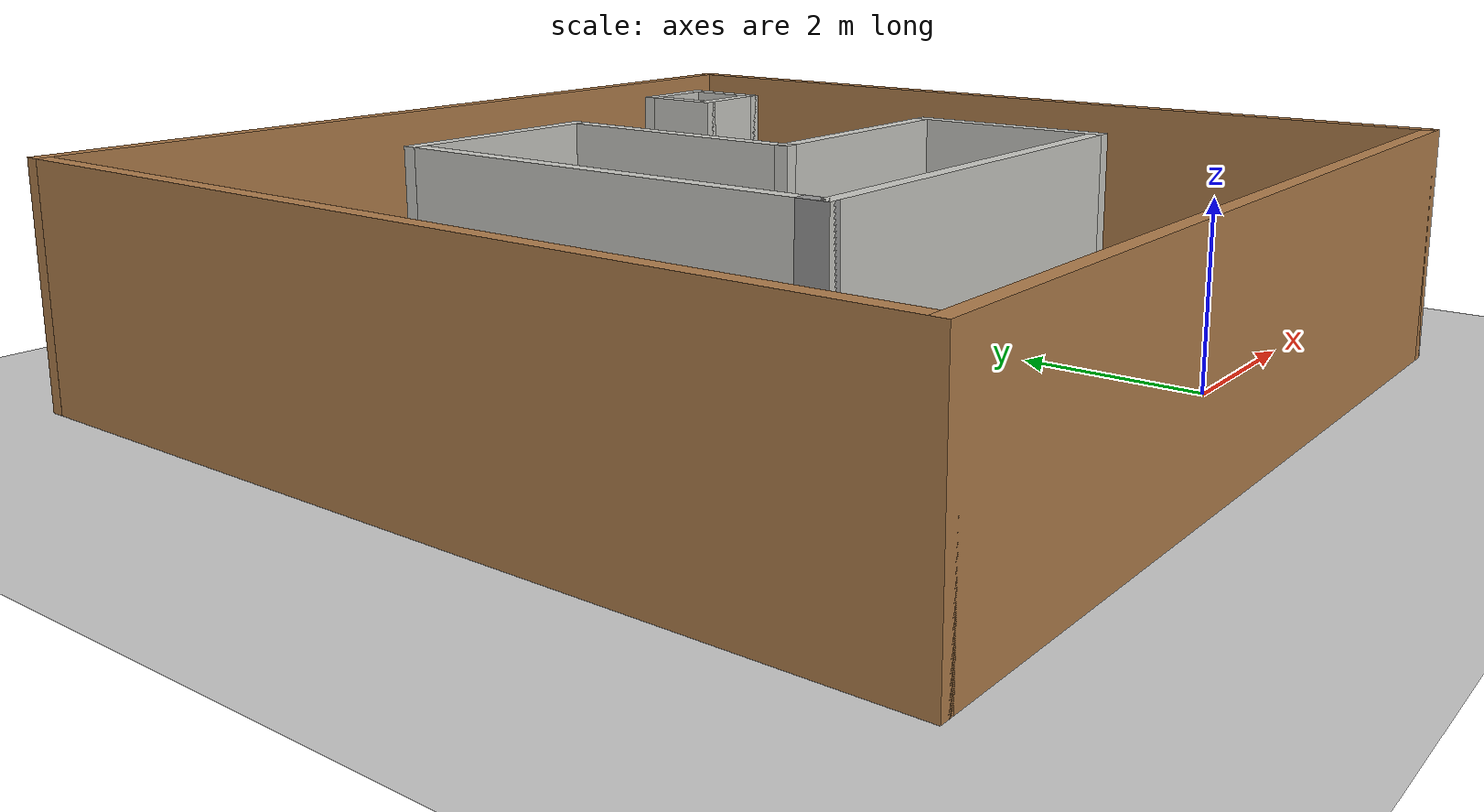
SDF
<sdf version="1.6">
 <world name="default">
  <light name="sun" type="directional">
   <pose>0 0 10 0 -0 0</pose>
   <diffuse>0.8 0.8 0.8 1</diffuse>
   <specular>0.2 0.2 0.2 1</specular>
   <attenuation>
    <range>1000</range>
    <constant>0.9</constant>
    <linear>0.01</linear>
    <quadratic>0.001</quadratic>
   </attenuation>
   <direction>-0.5 0.1 -0.9</direction>
  </light>
  <model name="ground_plane">
   <static>1</static>
   <link name="link">
    <collision name="collision">
     <geometry><plane><normal>0 0 1</normal><size>100 100</size></plane></geometry>
     <surface><friction><ode><mu>100</mu><mu2>50</mu2></ode></friction></surface>
    </collision>
    <visual name="visual">
     <cast_shadows>0</cast_shadows>
     <geometry><plane><normal>0 0 1</normal><size>100 100</size></plane></geometry>
     <material>
      <script><uri>file://media/materials/scripts/gazebo.material</uri><name>Gazebo/Grey</name></script>
     </material>
    </visual>
   </link>
  </model>
  <gravity>0 0 -9.8</gravity>
  <magnetic_field>6e-06 2.3e-05 -4.2e-05</magnetic_field>
  <atmosphere type="adiabatic"/>
  <physics name="default_physics" default="0" type="ode">
   <max_step_size>0.001</max_step_size>
   <real_time_factor>1</real_time_factor>
   <real_time_update_rate>1000</real_time_update_rate>
  </physics>
  <scene><ambient>0.4 0.4 0.4 1</ambient><background>0.7 0.7 0.7 1</background><shadows>1</shadows></scene>
  <spherical_coordinates>
   <surface_model>EARTH_WGS84</surface_model>
   <latitude_deg>0</latitude_deg>
   <longitude_deg>0</longitude_deg>
   <elevation>0</elevation>
   <heading_deg>0</heading_deg>
  </spherical_coordinates>
  <model name="newWorld">
   <pose>-2.30448 3.64043 0 0 -0 0</pose>
   <link name="Wall_65">
    <collision name="Wall_65_Collision">
     <geometry><box><size>10 0.15 2.5</size></box></geometry>
     <pose>0 0 1.25 0 -0 0</pose>
    </collision>
    <visual name="Wall_65_Visual">
     <pose>0 0 1.25 0 -0 0</pose>
     <geometry><box><size>10 0.15 2.5</size></box></geometry>
     <material>
      <script><uri>file://media/materials/scripts/gazebo.material</uri><name>Gazebo/Wood</name></script>
      <ambient>1 1 1 1</ambient>
     </material>
     <meta><layer>0</layer></meta>
    </visual>
    <pose>-4.925 0 0 0 0 -1.5708</pose>
   </link>
   <link name="Wall_66">
    <collision name="Wall_66_Collision">
     <geometry><box><size>10 0.15 2.5</size></box></geometry>
     <pose>0 0 1.25 0 -0 0</pose>
    </collision>
    <visual name="Wall_66_Visual">
     <pose>0 0 1.25 0 -0 0</pose>
     <geometry><box><size>10 0.15 2.5</size></box></geometry>
     <material>
      <script><uri>file://media/materials/scripts/gazebo.material</uri><name>Gazebo/Wood</name></script>
      <ambient>1 1 1 1</ambient>
     </material>
     <meta><layer>0</layer></meta>
    </visual>
    <pose>0 -4.925 0 0 -0 0</pose>
   </link>
   <link name="Wall_67">
    <collision name="Wall_67_Collision">
     <geometry><box><size>10 0.15 2.5</size></box></geometry>
     <pose>0 0 1.25 0 -0 0</pose>
    </collision>
    <visual name="Wall_67_Visual">
     <pose>0 0 1.25 0 -0 0</pose>
     <geometry><box><size>10 0.15 2.5</size></box></geometry>
     <material>
      <script><uri>file://media/materials/scripts/gazebo.material</uri><name>Gazebo/Wood</name></script>
      <ambient>1 1 1 1</ambient>
     </material>
     <meta><layer>0</layer></meta>
    </visual>
    <pose>4.925 0 0 0 -0 1.5708</pose>
   </link>
   <link name="Wall_68">
    <collision name="Wall_68_Collision">
     <geometry><box><size>10 0.15 2.5</size></box></geometry>
     <pose>0 0 1.25 0 -0 0</pose>
    </collision>
    <visual name="Wall_68_Visual">
     <pose>0 0 1.25 0 -0 0</pose>
     <geometry><box><size>10 0.15 2.5</size></box></geometry>
     <material>
      <script><uri>file://media/materials/scripts/gazebo.material</uri><name>Gazebo/Wood</name></script>
      <ambient>1 1 1 1</ambient>
     </material>
     <meta><layer>0</layer></meta>
    </visual>
    <pose>0 4.925 0 0 -0 3.14159</pose>
   </link>
   <link name="Wall_70">
    <collision name="Wall_70_Collision">
     <geometry><box><size>4.75 0.15 2.5</size></box></geometry>
     <pose>0 0 1.25 0 -0 0</pose>
    </collision>
    <visual name="Wall_70_Visual">
     <pose>0 0 1.25 0 -0 0</pose>
     <geometry><box><size>4.75 0.15 2.5</size></box></geometry>
     <material>
      <script><uri>file://media/materials/scripts/gazebo.material</uri><name>Gazebo/CeilingTiled</name></script>
      <ambient>1 1 1 1</ambient>
     </material>
     <meta><layer>0</layer></meta>
    </visual>
    <pose>-2.32281 0.387114 0 0 0 -1.5708</pose>
   </link>
   <link name="Wall_71">
    <collision name="Wall_71_Collision">
     <geometry><box><size>0.5 0.15 2.5</size></box></geometry>
     <pose>0 0 1.25 0 -0 0</pose>
    </collision>
    <visual name="Wall_71_Visual">
     <pose>0 0 1.25 0 -0 0</pose>
     <geometry><box><size>0.5 0.15 2.5</size></box></geometry>
     <material>
      <script><uri>file://media/materials/scripts/gazebo.material</uri><name>Gazebo/Grey</name></script>
      <ambient>1 1 1 1</ambient>
     </material>
     <meta><layer>0</layer></meta>
    </visual>
    <pose>-2.32281 -2.08789 0 0 0 -1.5708</pose>
   </link>
   <link name="Wall_72">
    <collision name="Wall_72_Collision">
     <geometry><box><size>5 0.15 2.5</size></box></geometry>
     <pose>0 0 1.25 0 -0 0</pose>
    </collision>
    <visual name="Wall_72_Visual">
     <pose>0 0 1.25 0 -0 0</pose>
     <geometry><box><size>5 0.15 2.5</size></box></geometry>
     <material>
      <script><uri>file://media/materials/scripts/gazebo.material</uri><name>Gazebo/CeilingTiled</name></script>
      <ambient>1 1 1 1</ambient>
     </material>
     <meta><layer>0</layer></meta>
    </visual>
    <pose>0.102193 -2.26289 0 0 -0 0</pose>
   </link>
   <link name="Wall_73">
    <collision name="Wall_73_Collision">
     <geometry><box><size>2.25 0.15 2.5</size></box></geometry>
     <pose>0 0 1.25 0 -0 0</pose>
    </collision>
    <visual name="Wall_73_Visual">
     <pose>0 0 1.25 0 -0 0</pose>
     <geometry><box><size>2.25 0.15 2.5</size></box></geometry>
     <material>
      <script><uri>file://media/materials/scripts/gazebo.material</uri><name>Gazebo/CeilingTiled</name></script>
      <ambient>1 1 1 1</ambient>
     </material>
     <meta><layer>0</layer></meta>
    </visual>
    <pose>2.52719 -1.21289 0 0 -0 1.5708</pose>
   </link>
   <link name="Wall_74">
    <collision name="Wall_74_Collision">
     <geometry><box><size>2.75 0.15 2.5</size></box></geometry>
     <pose>0 0 1.25 0 -0 0</pose>
    </collision>
    <visual name="Wall_74_Visual">
     <pose>0 0 1.25 0 -0 0</pose>
     <geometry><box><size>2.75 0.15 2.5</size></box></geometry>
     <material>
      <script><uri>file://media/materials/scripts/gazebo.material</uri><name>Gazebo/CeilingTiled</name></script>
      <ambient>1 1 1 1</ambient>
     </material>
     <meta><layer>0</layer></meta>
    </visual>
    <pose>1.22719 -0.162886 0 0 -0 3.14159</pose>
   </link>
   <link name="Wall_75">
    <collision name="Wall_75_Collision">
     <geometry><box><size>3 0.15 2.5</size></box></geometry>
     <pose>0 0 1.25 0 -0 0</pose>
    </collision>
    <visual name="Wall_75_Visual">
     <pose>0 0 1.25 0 -0 0</pose>
     <geometry><box><size>3 0.15 2.5</size></box></geometry>
     <material>
      <script><uri>file://media/materials/scripts/gazebo.material</uri><name>Gazebo/CeilingTiled</name></script>
      <ambient>1 1 1 1</ambient>
     </material>
     <meta><layer>0</layer></meta>
    </visual>
    <pose>-0.072806 1.26211 0 0 -0 1.5708</pose>
   </link>
   <link name="Wall_76">
    <collision name="Wall_76_Collision">
     <geometry><box><size>2.4 0.15 2.5</size></box></geometry>
     <pose>0 0 1.25 0 -0 0</pose>
    </collision>
    <visual name="Wall_76_Visual">
     <pose>0 0 1.25 0 -0 0</pose>
     <geometry><box><size>2.4 0.15 2.5</size></box></geometry>
     <material>
      <script><uri>file://media/materials/scripts/gazebo.material</uri><name>Gazebo/CeilingTiled</name></script>
      <ambient>1 1 1 1</ambient>
     </material>
     <meta><layer>0</layer></meta>
    </visual>
    <pose>-1.19781 2.68711 0 0 -0 3.14159</pose>
   </link>
   <link name="Wall_78">
    <collision name="Wall_78_Collision">
     <geometry><box><size>1 0.15 2.5</size></box></geometry>
     <pose>0 0 1.25 0 -0 0</pose>
    </collision>
    <visual name="Wall_78_Visual">
     <pose>0 0 1.25 0 -0 0</pose>
     <geometry><box><size>1 0.15 2.5</size></box></geometry>
     <material>
      <script><uri>file://media/materials/scripts/gazebo.material</uri><name>Gazebo/CeilingTiled</name></script>
      <ambient>1 1 1 1</ambient>
     </material>
     <meta><layer>0</layer></meta>
    </visual>
    <pose>2.2812 3.21315 0 0 0 -1.5708</pose>
   </link>
   <link name="Wall_79">
    <collision name="Wall_79_Collision">
     <geometry><box><size>1 0.15 2.5</size></box></geometry>
     <pose>0 0 1.25 0 -0 0</pose>
    </collision>
    <visual name="Wall_79_Visual">
     <pose>0 0 1.25 0 -0 0</pose>
     <geometry><box><size>1 0.15 2.5</size></box></geometry>
     <material>
      <script><uri>file://media/materials/scripts/gazebo.material</uri><name>Gazebo/CeilingTiled</name></script>
      <ambient>1 1 1 1</ambient>
     </material>
     <meta><layer>0</layer></meta>
    </visual>
    <pose>2.7062 2.78815 0 0 -0 0</pose>
   </link>
   <link name="Wall_80">
    <collision name="Wall_80_Collision">
     <geometry><box><size>1 0.15 2.5</size></box></geometry>
     <pose>0 0 1.25 0 -0 0</pose>
    </collision>
    <visual name="Wall_80_Visual">
     <pose>0 0 1.25 0 -0 0</pose>
     <geometry><box><size>1 0.15 2.5</size></box></geometry>
     <material>
      <script><uri>file://media/materials/scripts/gazebo.material</uri><name>Gazebo/CeilingTiled</name></script>
      <ambient>1 1 1 1</ambient>
     </material>
     <meta><layer>0</layer></meta>
    </visual>
    <pose>3.1312 3.21315 0 0 -0 1.5708</pose>
   </link>
   <link name="Wall_81">
    <collision name="Wall_81_Collision">
     <geometry><box><size>1 0.15 2.5</size></box></geometry>
     <pose>0 0 1.25 0 -0 0</pose>
    </collision>
    <visual name="Wall_81_Visual">
     <pose>0 0 1.25 0 -0 0</pose>
     <geometry><box><size>1 0.15 2.5</size></box></geometry>
     <material>
      <script><uri>file://media/materials/scripts/gazebo.material</uri><name>Gazebo/CeilingTiled</name></script>
      <ambient>1 1 1 1</ambient>
     </material>
     <meta><layer>0</layer></meta>
    </visual>
    <pose>2.7062 3.63815 0 0 -0 3.14159</pose>
   </link>
   <static>1</static>
  </model>
 </world>
</sdf>
